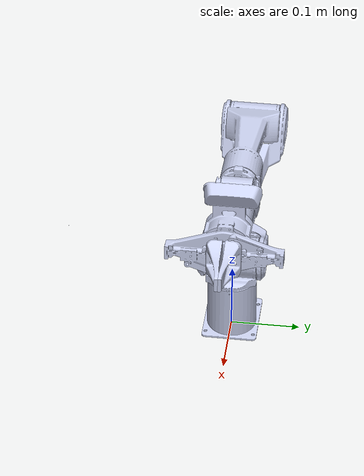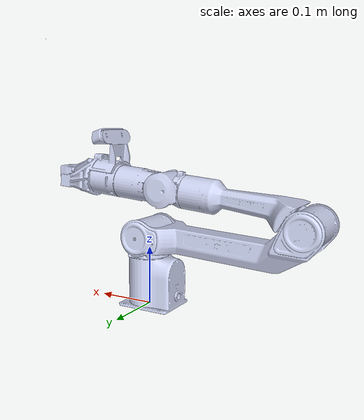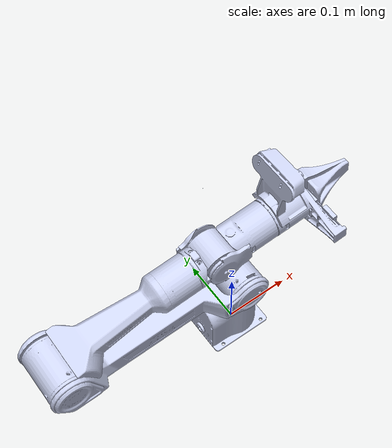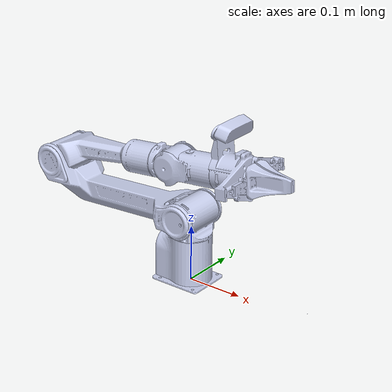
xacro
<?xml version="1.0"?>
<robot xmlns:xacro="http://www.ros.org/wiki/xacro" name="piper_camera">

    <link name="arm_base">
        <inertial>
        <origin
            xyz="-0.00979274765955341 1.82905827587138E-06 0.0410100126360189"
            rpy="0 0 0" />
        <mass value="0.162548567403693" />
        <inertia
            ixx="0.000226596924525071"
            ixy="-7.33972270153965E-08"
            ixz="2.13249977802622E-06"
            iyy="0.000269444772561524"
            iyz="8.15169009611054E-09"
            izz="0.000222318258878636" />
        </inertial>
        <visual>
        <origin xyz="0 0 0" rpy="0 0 0" />
        <geometry>
            <mesh filename="../meshes/dae/base_link.dae" />
        </geometry>
        <material name="">
            <color rgba="0.792156862745098 0.819607843137255 0.933333333333333 1" />
        </material>
        </visual>
        <collision>
            <origin xyz="0 0 0" rpy="0 0 0" />
            <geometry>
                <mesh filename="../meshes/base_link.STL" />
            </geometry>
        </collision>
    </link>

    <link name="link1">
        <inertial>
        <origin
            xyz="0.00131676031927024 0.000310288842008612 -0.00922874512303437"
            rpy="0 0 0" />
        <mass value="0.0978679932242825" />
        <inertia
            ixx="7.76684558296782E-05"
            ixy="1.09084650459924E-07"
            ixz="-1.9748053243241E-06"
            iyy="9.24967780161547E-05"
            iyz="9.91284646834582E-07"
            izz="8.24589062407807E-05" />
        </inertial>
        <visual>
        <origin xyz="0 0 0" rpy="0 0 0" />
        <geometry>
            <mesh filename="../meshes/dae/link1.dae" />
        </geometry>
        <material name="">
            <color rgba="0.792156862745098 0.819607843137255 0.933333333333333 1" />
        </material>
        </visual>
        <collision>
            <origin xyz="0 0 0" rpy="0 0 1.5708" />
            <geometry>
                <mesh filename="../meshes/link1.STL" />
            </geometry>
        </collision>
    </link>
    <joint name="joint1" type="revolute">
        <origin xyz="0 0 0.123" rpy="0 0 -1.5708" />
        <parent link="arm_base" />
        <child link="link1" />
        <axis xyz="0 0 1" />
        <limit lower="-2.618" upper="2.618" effort="100" velocity="3" />
    </joint>

    <link name="link2">
        <inertial>
        <origin
            xyz="0.148793602378802 -0.00242026983944119 0.00175154638467948"
            rpy="0 0 0" />
        <mass value="0.290888938633388" />
        <inertia
            ixx="0.000148959640166183"
            ixy="-7.37750384371657E-05"
            ixz="-9.68688405196236E-07"
            iyy="0.00172800946632652"
            iyz="-1.09692225564224E-06"
            izz="0.0017754628344594" />
        </inertial>
        <visual>
        <origin xyz="0 0 0" rpy="0 0 0" />
        <geometry>
            <mesh filename="../meshes/dae/link2.dae" />
        </geometry>
        <material name="">
            <color rgba="0.792156862745098 0.819607843137255 0.933333333333333 1" />
        </material>
        </visual>
        <collision>
            <origin xyz="0 0 0" rpy="0 0 0.1" />
            <geometry>
                <mesh filename="../meshes/link2.STL" />
            </geometry>
        </collision>
    </link>
    <joint name="joint2" type="revolute">
        <origin xyz="0 0 0" rpy="1.5708 -0.034907 -1.5708" />
        <parent link="link1" />
        <child link="link2" />
        <axis xyz="0 0 1" />
        <limit lower="0" upper="3.14" effort="100" velocity="3" />
    </joint>

    <link name="link3">
        <inertial>
        <origin
            xyz="-0.0996835215213704 0.0349477226691318 0.000508025815507312"
            rpy="0 0 0" />
        <mass value="0.290847697793211" />
        <inertia
            ixx="0.000107879011637167"
            ixy="2.92669521203626E-05"
            ixz="6.825922326238E-07"
            iyy="0.000214751671792086"
            iyz="-7.78469047878196E-07"
            izz="0.000241923439340319" />
        </inertial>
        <visual>
        <origin xyz="0 0 0" rpy="0 0 0" />
        <geometry>
            <mesh filename="../meshes/dae/link3.dae" />
        </geometry>
        <material name="">
            <color rgba="0.792156862745098 0.819607843137255 0.933333333333333 1" />
        </material>
        </visual>
        <collision>
        <origin xyz="0 0 0" rpy="0 0 -1.75" />
        <geometry>
            <mesh filename="../meshes/link3.STL" />
        </geometry>
        </collision>
    </link>
    <joint name="joint3" type="revolute">
        <origin xyz="0.28358 0.028726 0" rpy="0 0 0.06604341" />
        <parent link="link2" />
        <child link="link3" />
        <axis xyz="0 0 1" />
        <limit lower="-2.697" upper="0" effort="100" velocity="3" />
    </joint>

    <link name="link4">
        <inertial>
        <origin
            xyz="0.000276464622387979 -0.00102803669324875 -0.00472830700561663"
            rpy="0 0 0" />
        <mass value="0.127087348341362" />
        <inertia
            ixx="3.82011730423416E-05"
            ixy="-4.92358350897513E-08"
            ixz="4.89589432973119E-08"
            iyy="4.87048555222578E-05"
            iyz="6.70802942500512E-08"
            izz="4.10592077565559E-05" />
        </inertial>
        <visual>
        <origin xyz="0 0 0" rpy="0 0 0" />
        <geometry>
            <mesh filename="../meshes/dae/link4.dae" />
        </geometry>
        <material name="">
            <color rgba="0.792156862745098 0.819607843137255 0.933333333333333 1" />
        </material>
        </visual>
        <collision>
        <origin xyz="0 0 0" rpy="0 0 0" />
        <geometry>
            <mesh filename="../meshes/link4.STL" />
        </geometry>
        </collision>
    </link>
    <joint name="joint4" type="revolute">
        <origin xyz="-0.24221 0.068514 0" rpy="-1.5708 0 1.3826" />
        <parent link="link3" />
        <child link="link4" />
        <axis xyz="0 0 1" />
        <limit lower="-1.832" upper="1.832" effort="100" velocity="3" />
    </joint>

    <link name="link5">
        <inertial>
        <origin
            xyz="8.82262433516967E-05 0.0566829014808256 -0.00196119720482461"
            rpy="0 0 0" />
        <mass value="0.144711242639457" />
        <inertia
            ixx="4.39644313662493E-05"
            ixy="-3.59259686444846E-08"
            ixz="-1.89747741386183E-08"
            iyy="5.63173920951307E-05"
            iyz="-2.1540716689785E-07"
            izz="4.88713664675268E-05" />
        </inertial>
        <visual>
        <origin xyz="0 0 0" rpy="0 0 0" />
        <geometry>
            <mesh filename="../meshes/dae/link5.dae" />
        </geometry>
        <material name="">
            <color rgba="0.792156862745098 0.819607843137255 0.933333333333333 1" />
        </material>
        </visual>
        <collision>
        <origin xyz="0 0 0" rpy="0 0 -3.14" />
        <geometry>
            <mesh filename="../meshes/link5.STL" />
        </geometry>
        </collision>
    </link>
    <joint name="joint5" type="revolute">
        <origin xyz="0 0 0" rpy="1.5708 0 0" />
        <parent link="link4" />
        <child link="link5" />
        <axis xyz="0 0 1" />
        <limit lower="-1.22" upper="1.22" effort="100" velocity="3" />
    </joint>

    <link name="link6">
        <inertial>
        <origin
            xyz="0.00103120214523473 0.0121761387587524 0.0315480874960164"
            rpy="0 0 0" />
        <mass value="0.195187143240719" />
        <inertia
            ixx="6.43790256535539E-05"
            ixy="-1.2366166157046E-06"
            ixz="1.97664606328472E-07"
            iyy="0.000126146396374301"
            iyz="2.41157078516408E-06"
            izz="0.000154087076816444" />
        </inertial>
        <visual>
        <origin xyz="-0.002 -0.008 0" rpy="-1.57 0 0" />
        <geometry>
            <mesh filename="../meshes/dae/camera_v3.dae"/>
        </geometry>
        <material name="">
            <color rgba="0.792156862745098 0.819607843137255 0.933333333333333 1" />
        </material>
        </visual>
        <collision>
        <origin xyz="-0.002 -0.008 0" rpy="-1.57 0 0" />
        <geometry>
            <mesh filename="../meshes/dae/camera_v3.dae"/>
        </geometry>
        </collision>
    </link>
    <joint name="joint6" type="revolute">
        <origin xyz="0 0.091 0.0014165" rpy="-1.5708 -1.5708 0" />
        <parent link="link5" />
        <child link="link6" />
        <axis xyz="0 0 1" />
        <limit lower="-3.14" upper="3.14" effort="100" velocity="3" />
    </joint>

    <link name="link7">
        <inertial>
        <origin
            xyz="-0.000277778383727112 -0.0467673043650824 -0.00921029491873201"
            rpy="0 0 0" />
        <mass value="0.02648229234527" />
        <inertia
            ixx="9.99787479924589E-06"
            ixy="-1.57548495096104E-07"
            ixz="-2.71342775003487E-08"
            iyy="6.1795212293655E-06"
            iyz="-1.58939803580081E-06"
            izz="1.42102717246564E-05" />
        </inertial>
        <visual>
        <origin xyz="0 0 0" rpy="0 0 0" />
        <geometry>
            <mesh filename="../meshes/dae/link7.dae" />
        </geometry>
        <material name="">
            <color rgba="0.792156862745098 0.819607843137255 0.933333333333333 1" />
        </material>
        </visual>
        <collision>
        <origin xyz="-0.001 0 0.0003" rpy="0 3.14 0" />
        <geometry>
            <mesh filename="../meshes/link7.STL" />
        </geometry>
        </collision>
    </link>
    <joint name="joint7" type="prismatic">
        <origin xyz="0 0 0.13503" rpy="1.5708 0 1.5708" />
        <parent link="link6" />
        <child link="link7" />
        <axis xyz="0 0 -1" />
        <limit lower="0" upper="0.05" effort="100" velocity="1" />
    </joint>

    <link name="link8">
        <inertial>
        <origin
            xyz="0.000277816920932317 0.0467673824063769 -0.00921030054508036"
            rpy="0 0 0" />
        <mass value="0.0264822021416248" />
        <inertia
            ixx="9.99779119357223E-06"
            ixy="-1.57542283433504E-07"
            ixz="2.71367446701359E-08"
            iyy="6.17952441557932E-06"
            iyz="1.58939319453383E-06"
            izz="1.4210192754512E-05" />
        </inertial>
        <visual>
        <origin xyz="0 0 0" rpy="0 0 0" />
        <geometry>
            <mesh filename="../meshes/dae/link8.dae" />
        </geometry>
        <material name="">
            <color rgba="0.792156862745098 0.819607843137255 0.933333333333333 1" />
        </material>
        </visual>
        <collision>
        <origin xyz="-0.001 0 0.0003" rpy="3.14 0 0" />
        <geometry>
            <mesh filename="../meshes/link8.STL" />
        </geometry>
        </collision>
    </link>
    <joint name="joint8" type="prismatic">
        <origin xyz="0 0 0.13503" rpy="-1.5708 0 1.5708" />
        <parent link="link6" />
        <child link="link8" />
        <axis xyz="0 0 1" />
        <limit lower="-0.05" upper="0" effort="100" velocity="1" />
    </joint>

</robot>
